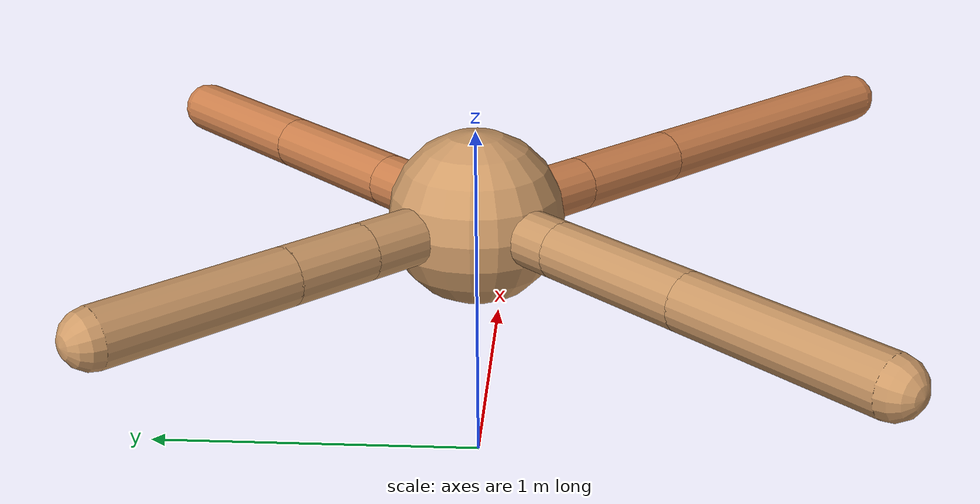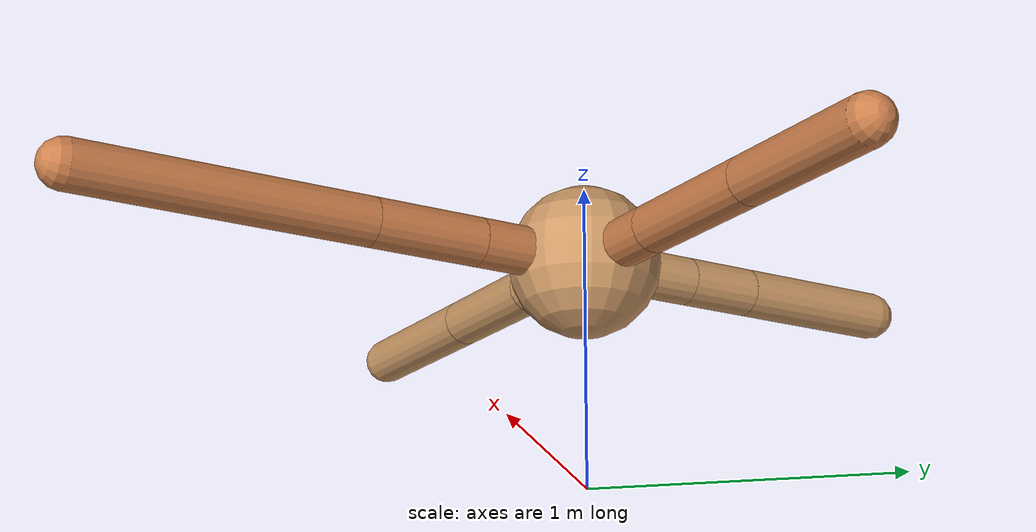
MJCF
<mujoco model="ant">
  <compiler angle="degree" coordinate="local" inertiafromgeom="true" />
  <option integrator="RK4" timestep="0.01" />
  <custom>
    <numeric data="0.0 0.0 0.55 1.0 0.0 0.0 0.0 0.0 1.0 0.0 -1.0 0.0 -1.0 0.0 1.0" name="init_qpos" />
  </custom>
  <default>
    <joint armature="1" damping="1" limited="true" />
    <geom conaffinity="0" condim="3" density="5.0" friction="1.5 0.1 0.1" margin="0.01" rgba="0.8 0.6 0.4 1" />
  </default>
  <worldbody>
    <body name="torso" pos="0 0 0.75">
      <geom name="torso_geom" pos="0 0 0" size="0.25" type="sphere" />

      <body name="front_left_leg" pos="0 0 0">
        <geom fromto="0.0 0.0 0.0 0.2781210623686927 0.2781210623686927 0.0" name="aux_1_geom" size="0.08" type="capsule" rgba=".8 .5 .3 1" />
        <body name="aux_1" pos="0.2781210623686927 0.2781210623686927 0.0">
          <joint axis="0 0 1" name="hip_1" pos="0.0 0.0 0.0" range="-40 40" type="hinge" />
          <geom fromto="0.0 0.0 0.0 0.3452842289095643 0.3452842289095643 0.0" name="left_leg_geom" size="0.08" type="capsule" rgba=".8 .5 .3 1" />
          <body pos="0.3452842289095643 0.3452842289095643 0.0" name="front_left_foot">
            <joint axis="-1 1 0" name="ankle_1" pos="0.0 0.0 0.0" range="30 100" type="hinge" />
            <geom fromto="0.0 0.0 0.0 0.3812360575074081 0.3812360575074081 0.0" name="left_ankle_geom" size="0.08" type="capsule" rgba=".8 .5 .3 1" />
          </body>
        </body>
      </body>
      <body name="front_right_leg" pos="0 0 0">
        <geom fromto="0.0 0.0 0.0 -0.2817288919180986 0.2817288919180986 0.0" name="aux_2_geom" size="0.08" type="capsule" />
        <body name="aux_2" pos="-0.2817288919180986 0.2817288919180986 0.0">
          <joint axis="0 0 1" name="hip_2" pos="0.0 0.0 0.0" range="-40 40" type="hinge" />
          <geom fromto="0.0 0.0 0.0 -0.17336239468305564 0.17336239468305564 0.0" name="right_leg_geom" size="0.08" type="capsule" />
          <body pos="-0.17336239468305564 0.17336239468305564 0.0" name="front_right_foot">
            <joint axis="1 1 0" name="ankle_2" pos="0.0 0.0 0.0" range="-100 -30" type="hinge" />
            <geom fromto="0.0 0.0 0.0 -0.3858387883015169 0.3858387883015169 0.0" name="right_ankle_geom" size="0.08" type="capsule" />
          </body>
        </body>
      </body>
      <body name="left_back_leg" pos="0 0 0">
        <geom fromto="0.0 0.0 0.0 -0.24340853531377796 -0.24340853531377796 0.0" name="aux_3_geom" size="0.08" type="capsule" />
        <body name="aux_3" pos="-0.24340853531377796 -0.24340853531377796 0.0">
          <joint axis="0 0 1" name="hip_3" pos="0.0 0.0 0.0" range="-40 40" type="hinge" />
          <geom fromto="0.0 0.0 0.0 -0.3164700983191584 -0.3164700983191584 0.0" name="back_leg_geom" size="0.08" type="capsule" />
          <body pos="-0.3164700983191584 -0.3164700983191584 0.0" name="left_back_foot">
            <joint axis="-1 1 0" name="ankle_3" pos="0.0 0.0 0.0" range="-100 -30" type="hinge" />
            <geom fromto="0.0 0.0 0.0 -0.42784969847249327 -0.42784969847249327 0.0" name="third_ankle_geom" size="0.08" type="capsule" />
          </body>
        </body>
      </body>
      <body name="right_back_leg" pos="0 0 0">
        <geom fromto="0.0 0.0 0.0 0.28240804984247186 -0.28240804984247186 0.0" name="aux_4_geom" size="0.08" type="capsule" rgba=".8 .5 .3 1" />
        <body name="aux_4" pos="0.28240804984247186 -0.28240804984247186 0.0">
          <joint axis="0 0 1" name="hip_4" pos="0.0 0.0 0.0" range="-40 40" type="hinge" />
          <geom fromto="0.0 0.0 0.0 0.2661841547471806 -0.2661841547471806 0.0" name="rightback_leg_geom" size="0.08" type="capsule" rgba=".8 .5 .3 1" />
          <body pos="0.2661841547471806 -0.2661841547471806 0.0" name="right_back_foot">
            <joint axis="1 1 0" name="ankle_4" pos="0.0 0.0 0.0" range="30 100" type="hinge" />
            <geom fromto="0.0 0.0 0.0 0.6904683329012644 -0.6904683329012644 0.0" name="fourth_ankle_geom" size="0.08" type="capsule" rgba=".8 .5 .3 1" />
          </body>
        </body>
      </body>
    </body>
  </worldbody>
  <actuator>
    <motor ctrllimited="true" ctrlrange="-1.0 1.0" joint="hip_4" gear="150" />
    <motor ctrllimited="true" ctrlrange="-1.0 1.0" joint="ankle_4" gear="150" />
    <motor ctrllimited="true" ctrlrange="-1.0 1.0" joint="hip_1" gear="150" />
    <motor ctrllimited="true" ctrlrange="-1.0 1.0" joint="ankle_1" gear="150" />
    <motor ctrllimited="true" ctrlrange="-1.0 1.0" joint="hip_2" gear="150" />
    <motor ctrllimited="true" ctrlrange="-1.0 1.0" joint="ankle_2" gear="150" />
    <motor ctrllimited="true" ctrlrange="-1.0 1.0" joint="hip_3" gear="150" />
    <motor ctrllimited="true" ctrlrange="-1.0 1.0" joint="ankle_3" gear="150" />
  </actuator>
</mujoco>
